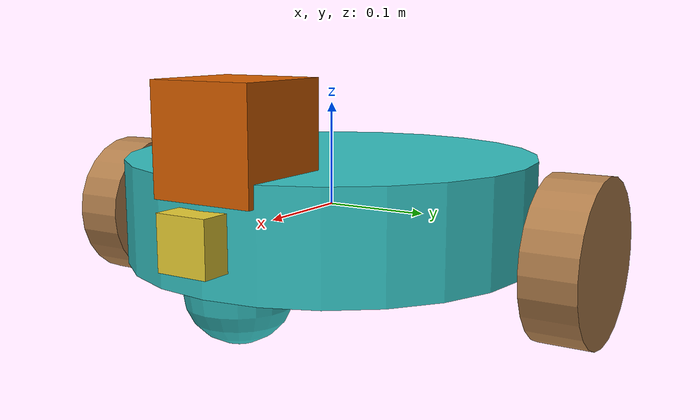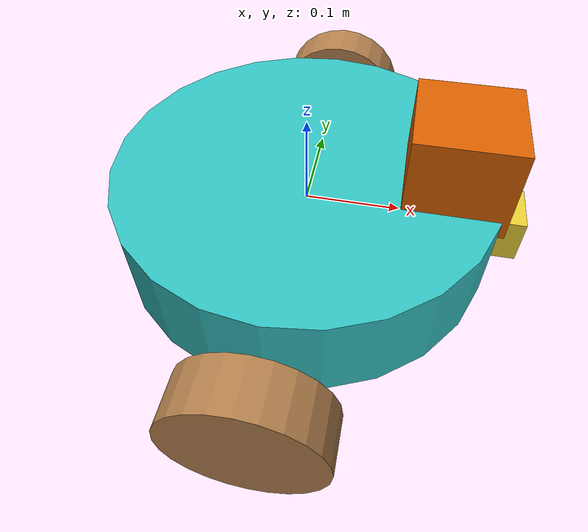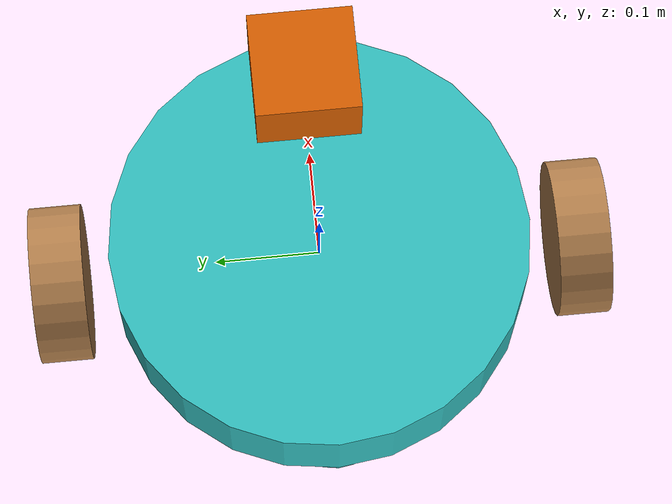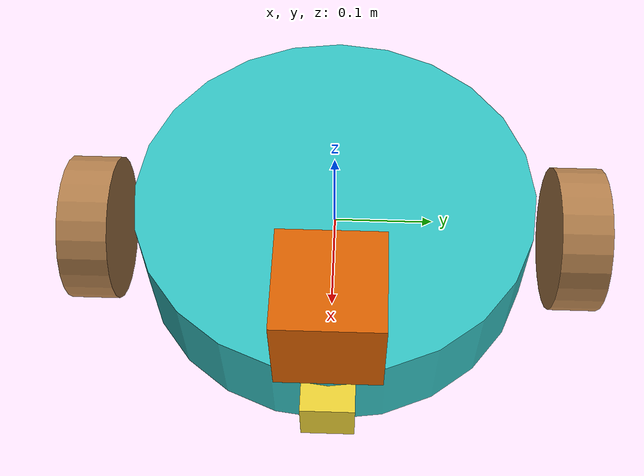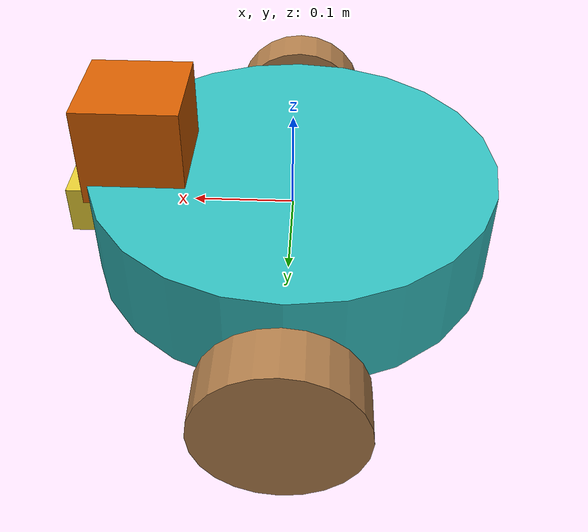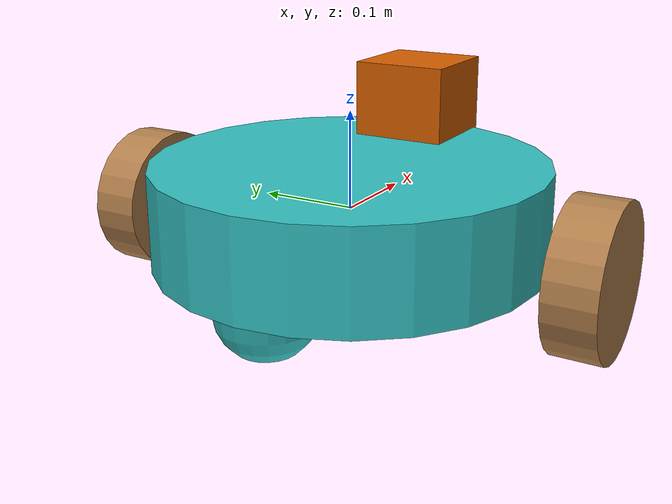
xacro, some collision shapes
<?xml version='1.0'?>

<robot name="my_robot" xmlns:xacro="http://www.ros.org/wiki/xacro">

	<!-- import sensor plugins -->
	<xacro:include filename="$(find my_robot)/urdf/my_robot.gazebo"/>

  <link name="robot_footprint"></link>

  <joint name="robot_footprint_joint" type="fixed">
    <origin xyz="0 0 0" rpy="0 0 0" />
    <parent link="robot_footprint"/>
    <child link="chassis" />
  </joint>

  <link name='chassis'>
    <pose>0 0 0.1 0 0 0</pose>

    <inertial>
      <mass value="15.0"/>
      <origin xyz="0 0 0" rpy=" 0 0 0"/>
      <inertia
          ixx="0.1" ixy="0" ixz="0"
          iyy="0.1" iyz="0"
          izz="0.1"
      />
    </inertial>

    <collision name='collision'>
      <origin xyz="0 0 0" rpy=" 0 0 0"/>
      <geometry>
        <cylinder radius="0.2" length="0.1"/>
      </geometry>
    </collision>

    <visual name='chassis_visual'>
      <origin xyz="0 0 0" rpy=" 0 0 0"/>
      <geometry>
        <cylinder radius="0.2" length="0.1"/>
      </geometry>
    </visual>

    <collision name='back_caster_collision'>
      <origin xyz="-0.15 0 -0.05" rpy=" 0 0 0"/>
      <geometry>
        <sphere radius="0.05"/>
      </geometry>
    </collision>

    <visual name='back_caster_visual'>
      <origin xyz="-0.15 0 -0.05" rpy=" 0 0 0"/>
      <geometry>
        <sphere radius="0.05"/>
      </geometry>
    </visual>

    <collision name='front_caster_collision'>
      <origin xyz="0.15 0 -0.05" rpy=" 0 0 0"/>
      <geometry>
        <sphere radius="0.05"/>
      </geometry>
    </collision>

    <visual name='front_caster_visual'>
      <origin xyz="0.15 0 -0.05" rpy=" 0 0 0"/>
      <geometry>
        <sphere radius="0.05"/>
      </geometry>
    </visual>

  </link>

	<link name="left_wheel">

		<collision name="left_wheel_collision">
			<origin xyz="0 0 0" rpy="0 1.57 1.57"/>
			<geometry>
				<cylinder radius="0.075" length="0.05"/>
			</geometry>
		</collision>

		<inertial>
			<origin xyz="0 0 0" rpy="0 1.57 1.57"/>
			<mass value="5"/>
			  <inertia
				  ixx="0.1" ixy="0" ixz="0"
				  iyy="0.1" iyz="0"
				  izz="0.1"
			  />
		</inertial>

		<visual name="left_wheel_visual">
				<origin xyz="0 0 0" rpy="0 1.57 1.57"/>
			<geometry>
				<cylinder radius="0.075" length="0.05"/>
			</geometry>
		</visual>
	</link>

	<link name="right_wheel">

		<collision name="right_wheel_collision">
			<origin xyz="0 0 0" rpy="0 1.57 1.57"/>
			<geometry>
				<cylinder radius="0.075" length="0.05"/>
			</geometry>
		</collision>

		<inertial>
			<origin xyz="0 0 0" rpy="0 1.57 1.57"/>
			<mass value="5"/>
			  <inertia
				  ixx="0.1" ixy="0" ixz="0"
				  iyy="0.1" iyz="0"
				  izz="0.1"
			  />
		</inertial>

		<visual name="right_wheel_visual">
				<origin xyz="0 0 0" rpy="0 1.57 1.57"/>
			<geometry>
				<cylinder radius="0.075" length="0.05"/>
			</geometry>
		</visual>
	</link>

	<joint type="continuous" name="left_wheel_hinge">
		<origin xyz="0 0.25 -0.025" rpy="0 0 0"/>
		<child link="left_wheel"/>
		<parent link="chassis"/>
		<axis xyz="0 1 0" rpy="0 0 0"/>
		<limit effort="10000" velocity="1000"/>
		<dynamics damping="1.0" friction="1.0"/>
	</joint>

	<joint type="continuous" name="right_wheel_hinge">
		<origin xyz="0 -0.25 -0.025" rpy="0 0 0"/>
		<child link="right_wheel"/>
		<parent link="chassis"/>
		<axis xyz="0 1 0" rpy="0 0 0"/>
		<limit effort="10000" velocity="1000"/>
		<dynamics damping="1.0" friction="1.0"/>
	</joint>

	<!-- Camera link and joint -->
	<link name="camera">
		<visual>
			<origin xyz="0 0 0" rpy="0 0 0"/>
			<geometry>
				<box size="0.05 0.05 0.05"/>
			</geometry>
		</visual>
		<collision>
			<origin xyz="0 0 0" rpy="0 0 0"/>
			<geometry>
				<box size="0.05 0.05 0.05"/>
			</geometry>
		</collision>
		<inertial>
			<origin xyz="0 0 0" rpy="0 0 0"/>
			<mass value="0.1"/>
			<inertia
				ixx="1e-6" ixy="0" ixz="0"
				iyy="1e-6" iyz="0"
				izz="1e-6"
			/>
		</inertial>
	</link>

	<joint name="camera_joint" type="fixed">
		<origin xyz="0.2 0 0" rpy="0 0 0"/>
		<child link="camera"/>
		<parent link="chassis"/>
		<axis xyz="0 1 0" rpy="0 0 0"/>
	</joint>

	<!-- Lidar link and joint -->
	<link name="hokuyo">
		<visual>
			<origin xyz="0 0 0" rpy="0 0 0"/>
			<geometry>
				<mesh filename="package://my_robot/meshes/hokuyo.dae"/>
			</geometry>
		</visual>
		<collision>
			<origin xyz="0 0 0" rpy="0 0 0"/>
			<geometry>
				<box size="0.1 0.1 0.1"/>
			</geometry>
		</collision>
		<inertial>
			<origin xyz="0 0 0" rpy="0 0 0"/>
			<mass value="1e-5"/>
			<inertia
				ixx="1e-6" ixy="0" ixz="0"
				iyy="1e-6" iyz="0"
				izz="1e-6"
			/>
		</inertial>
	</link>

	<joint name="hokuyo_joint" type="fixed">
		<origin xyz="0.15 0 0.08" rpy="0 0 0"/>
		<child link="hokuyo"/>
		<parent link="chassis"/>
		<axis xyz="0 1 0" rpy="0 0 0"/>
	</joint>

	<joint name="camera_optical_joint" type="fixed">
		<origin xyz="0 0 0" rpy="-1.5707 0 -1.5707"/>
		<parent link="camera"/>
		<child link="camera_link_optical"/>
	</joint>

	<link name="camera_link_optical">
	</link>

</robot>
